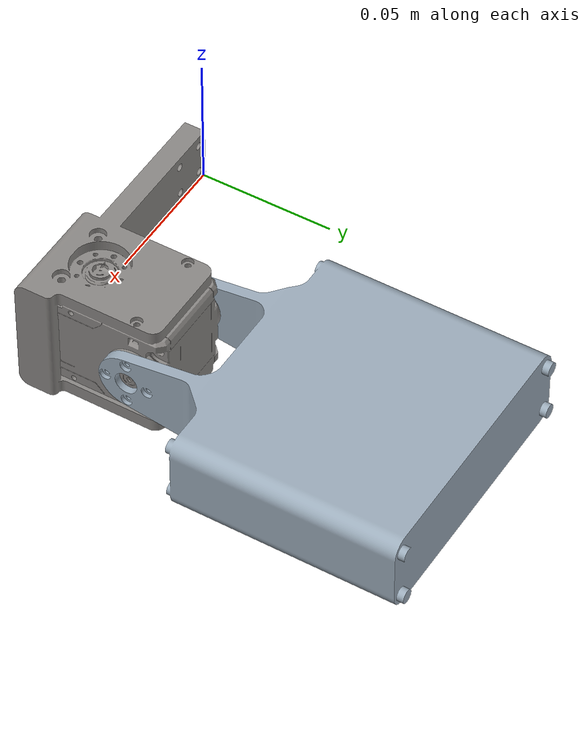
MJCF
<mujoco model="sysID_2XC430">
  <compiler angle="radian" autolimits="true" />
  <asset>
    <mesh name="2xc430_visual" file="../assemblies/sysID_2XC430/meshes/2xc430_visual.stl" />
    <mesh name="arm_430_visual" file="../assemblies/sysID_2XC430/meshes/arm_430_visual.stl" />
  </asset>
  <worldbody>
    <geom rgba="0.538369 0.527081 0.516241 1" mesh="2xc430_visual" class="visual" />
    <body name="arm_430" pos="0.096 0.0326999 0.0062194" quat="0.5 -0.5 0.5 -0.5">
      <inertial pos="-0.0700005 0 -0.019" quat="0.707107 0 0 0.707107" mass="0.0945" diaginertia="0.000176057 9.76865e-05 9.75621e-05" />
      <joint name="joint_0" pos="0 0 0" axis="0 0 1" limited="true" range="-1.5708 1.5708" damping="0.218" armature="0.002" frictionloss="0.494" />
      <geom rgba="0.604714 0.667227 0.72422 1" mesh="arm_430_visual" class="visual" />
    </body>
  </worldbody>
  <actuator>
    <position name="joint_0_act" joint="joint_0" kp="18.75" ctrlrange="-1.5708 1.5708" class="XC430" />
  </actuator>
  <default>
    <default class="XM430">
      <position forcerange="-5 5" />
    </default>
    <default class="XC430">
      <position forcerange="-2 2" />
    </default>
    <default class="XL430">
      <position forcerange="-2 2" />
    </default>
    <default class="XC330">
      <position forcerange="-1 1" />
    </default>
    <geom type="mesh" solref=".004 1" />
    <default class="visual">
      <geom contype="0" conaffinity="0" group="2" />
    </default>
    <default class="collision">
      <geom group="3" />
    </default>
  </default>
  <contact />
</mujoco>
